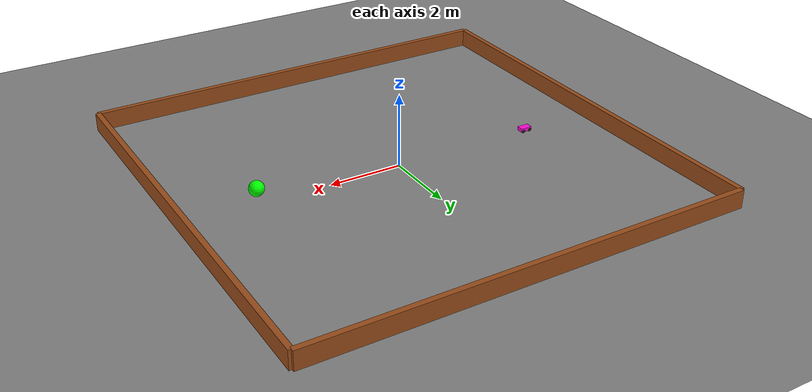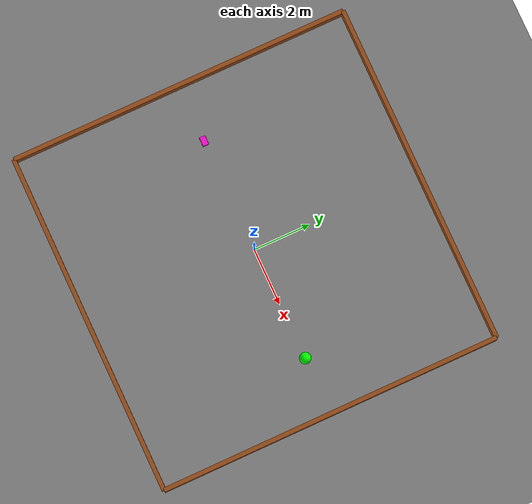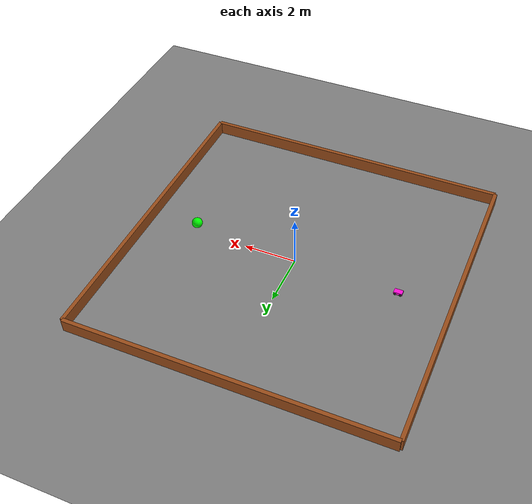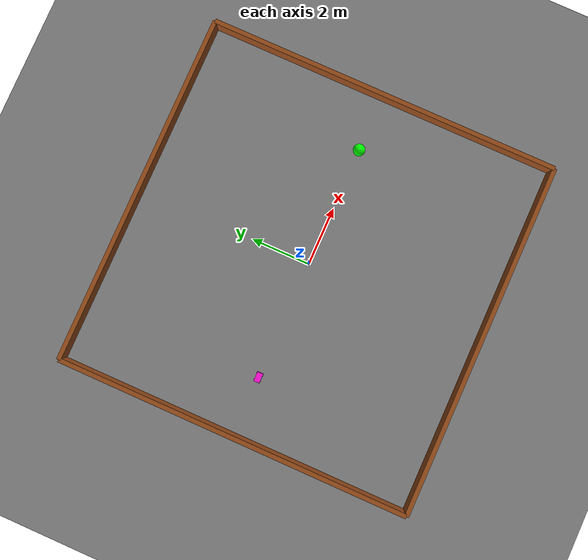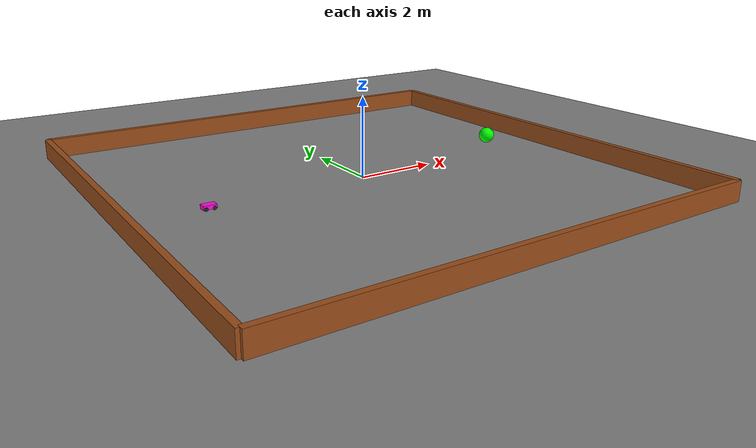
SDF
<?xml version="1.0" ?>
<sdf version="1.9">
  <world name="test_random_obstacles">

    <gui fullscreen="0">
      <plugin filename="MinimalScene" name="3D View">
        <gz-gui>
          <title>3D View</title>
          <property type="bool" key="showTitleBar">false</property>
          <property type="string" key="state">docked</property>
        </gz-gui>
        <engine>ogre2</engine>
        <scene>scene</scene>
        <ambient_light>0.4 0.4 0.4</ambient_light>
        <background_color>0.8 0.8 0.8</background_color>
        <camera_pose>0 -10 12 0 0.7 1.57</camera_pose>
      </plugin>
      <plugin filename="GzSceneManager" name="Scene Manager"/>
      <plugin filename="InteractiveViewControl" name="Interactive view"/>
      <plugin filename="CameraTracking" name="Camera Tracking"/>
      <plugin filename="MarkerManager" name="Marker Manager"/>
      <plugin filename="WorldControl" name="World control">
        <gz-gui>
          <title>World control</title>
          <property type="bool" key="showTitleBar">false</property>
          <property type="bool" key="resizable">false</property>
          <property type="double" key="height">72</property>
          <property type="string" key="state">floating</property>
          <anchors target="3D View">
            <line own="left" target="left"/>
            <line own="bottom" target="bottom"/>
          </anchors>
        </gz-gui>
        <play_pause>true</play_pause>
        <step>true</step>
      </plugin>
      <plugin filename="WorldStats" name="World stats">
        <gz-gui>
          <title>World stats</title>
          <property type="bool" key="showTitleBar">false</property>
          <property type="bool" key="resizable">false</property>
          <property type="double" key="height">110</property>
          <property type="double" key="width">290</property>
          <property type="string" key="state">floating</property>
          <anchors target="3D View">
            <line own="right" target="right"/>
            <line own="bottom" target="bottom"/>
          </anchors>
        </gz-gui>
        <sim_time>true</sim_time>
        <real_time>true</real_time>
        <real_time_factor>true</real_time_factor>
      </plugin>
      <plugin filename="EntityTree" name="Entity tree">
        <gz-gui>
          <property type="string" key="state">docked_collapsed</property>
        </gz-gui>
      </plugin>
    </gui>

    <physics name="1ms" type="ode">
      <max_step_size>0.001</max_step_size>
      <real_time_factor>1.0</real_time_factor>
    </physics>

    <plugin filename="gz-sim-physics-system" name="gz::sim::systems::Physics"/>
    <plugin filename="gz-sim-user-commands-system" name="gz::sim::systems::UserCommands"/>
    <plugin filename="gz-sim-scene-broadcaster-system" name="gz::sim::systems::SceneBroadcaster"/>
    <plugin filename="gz-sim-sensors-system" name="gz::sim::systems::Sensors">
      <render_engine>ogre2</render_engine>
    </plugin>
    <plugin filename="gz-sim-imu-system" name="gz::sim::systems::Imu"/>
    <plugin filename="gz-sim-contact-system" name="gz::sim::systems::Contact"/>

    <light type="directional" name="sun">
      <cast_shadows>true</cast_shadows>
      <pose>0 0 10 0 0 0</pose>
      <diffuse>0.9 0.9 0.9 1</diffuse>
      <direction>-0.5 0.1 -0.9</direction>
    </light>

    <model name="ground">
      <static>true</static>
      <link name="link">
        <collision name="c"><geometry><plane><normal>0 0 1</normal><size>30 30</size></plane></geometry></collision>
        <visual name="v"><geometry><plane><normal>0 0 1</normal><size>30 30</size></plane></geometry>
          <material><ambient>0.5 0.5 0.5 1</ambient></material>
        </visual>
      </link>
    </model>

    <!-- Boundary walls -->
    <model name="wall_n"><static>true</static><pose>0 6 0.25 0 0 0</pose>
      <link name="l"><collision name="c"><geometry><box><size>12 0.15 0.5</size></box></geometry></collision>
        <visual name="v"><geometry><box><size>12 0.15 0.5</size></box></geometry>
          <material><ambient>0.6 0.3 0.1 1</ambient></material></visual></link></model>
    <model name="wall_s"><static>true</static><pose>0 -6 0.25 0 0 0</pose>
      <link name="l"><collision name="c"><geometry><box><size>12 0.15 0.5</size></box></geometry></collision>
        <visual name="v"><geometry><box><size>12 0.15 0.5</size></box></geometry>
          <material><ambient>0.6 0.3 0.1 1</ambient></material></visual></link></model>
    <model name="wall_e"><static>true</static><pose>6 0 0.25 0 0 0</pose>
      <link name="l"><collision name="c"><geometry><box><size>0.15 12 0.5</size></box></geometry></collision>
        <visual name="v"><geometry><box><size>0.15 12 0.5</size></box></geometry>
          <material><ambient>0.6 0.3 0.1 1</ambient></material></visual></link></model>
    <model name="wall_w"><static>true</static><pose>-6 0 0.25 0 0 0</pose>
      <link name="l"><collision name="c"><geometry><box><size>0.15 12 0.5</size></box></geometry></collision>
        <visual name="v"><geometry><box><size>0.15 12 0.5</size></box></geometry>
          <material><ambient>0.6 0.3 0.1 1</ambient></material></visual></link></model>

    <!-- Goal marker -->
    <model name="goal_marker">
      <static>true</static>
      <pose>4.0 0.0 0.5 0 0 0</pose>
      <link name="link">
        <visual name="v"><geometry><sphere><radius>0.2</radius></sphere></geometry>
          <material><ambient>0.0 1.0 0.0 1</ambient><diffuse>0.0 1.0 0.0 1</diffuse></material>
        </visual>
      </link>
    </model>

    <!-- Limo Pro robot -->
    <include>
      <uri>model://limo_pro</uri>
      <name>limo</name>
      <pose>-4 0 0.055 0 0 0</pose>
    </include>

  </world>
</sdf>

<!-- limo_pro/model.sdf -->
<sdf version="1.9">
  <model name="limo_pro">
    <static>false</static>

    <!-- ============ CHASSIS ============ -->
    <link name="base_link">
      <inertial>
        <mass>4.5</mass>
        <inertia>
          <ixx>0.045</ixx><iyy>0.08</iyy><izz>0.09</izz>
          <ixy>0</ixy><ixz>0</ixz><iyz>0</iyz>
        </inertia>
      </inertial>
      <visual name="chassis_visual">
        <geometry>
          <box><size>0.32 0.20 0.10</size></box>
        </geometry>
        <material>
          <ambient>1.0 0.0 0.85 1</ambient>
          <diffuse>1.0 0.05 0.85 1</diffuse>
          <emissive>0.35 0.0 0.3 1</emissive>
        </material>
      </visual>
      <collision name="chassis_collision">
        <geometry>
          <box><size>0.32 0.20 0.10</size></box>
        </geometry>
      </collision>

      <!-- ============ CAMERA SENSOR ============ -->
      <sensor name="camera" type="camera">
        <pose>0.16 0 0.12 0 0 0</pose>
        <always_on>true</always_on>
        <update_rate>30</update_rate>
        <topic>limo/camera</topic>
        <camera>
          <horizontal_fov>1.2</horizontal_fov>
          <image>
            <width>640</width>
            <height>480</height>
            <format>R8G8B8</format>
          </image>
          <clip><near>0.05</near><far>50</far></clip>
        </camera>
      </sensor>

      <!-- ============ LIDAR SENSOR ============ -->
      <sensor name="lidar" type="gpu_lidar">
        <pose>0.0 0 0.15 0 0 0</pose>
        <always_on>true</always_on>
        <update_rate>10</update_rate>
        <topic>limo/lidar</topic>
        <lidar>
          <scan>
            <horizontal>
              <samples>360</samples>
              <resolution>1</resolution>
              <min_angle>0</min_angle>
              <max_angle>6.28318</max_angle>
            </horizontal>
          </scan>
          <range>
            <min>0.1</min>
            <max>12.0</max>
            <resolution>0.01</resolution>
          </range>
        </lidar>
      </sensor>

      <!-- ============ IMU SENSOR ============ -->
      <sensor name="imu" type="imu">
        <pose>0 0 0.05 0 0 0</pose>
        <always_on>true</always_on>
        <update_rate>100</update_rate>
        <topic>limo/imu</topic>
        <imu>
          <angular_velocity>
            <x><noise type="gaussian"><mean>0</mean><stddev>0.001</stddev></noise></x>
            <y><noise type="gaussian"><mean>0</mean><stddev>0.001</stddev></noise></y>
            <z><noise type="gaussian"><mean>0</mean><stddev>0.001</stddev></noise></z>
          </angular_velocity>
          <linear_acceleration>
            <x><noise type="gaussian"><mean>0</mean><stddev>0.02</stddev></noise></x>
            <y><noise type="gaussian"><mean>0</mean><stddev>0.02</stddev></noise></y>
            <z><noise type="gaussian"><mean>0</mean><stddev>0.02</stddev></noise></z>
          </linear_acceleration>
        </imu>
      </sensor>
    </link>

    <!-- ============ REAR LEFT WHEEL ============ -->
    <link name="rear_left_wheel">
      <pose>-0.1 0.096 -0.03 -1.5707 0 0</pose>
      <inertial>
        <mass>0.3</mass>
        <inertia>
          <ixx>0.0002</ixx><iyy>0.0002</iyy><izz>0.0003</izz>
          <ixy>0</ixy><ixz>0</ixz><iyz>0</iyz>
        </inertia>
      </inertial>
      <visual name="visual">
        <geometry><cylinder><radius>0.045</radius><length>0.03</length></cylinder></geometry>
        <material><ambient>0.1 0.1 0.1 1</ambient><diffuse>0.15 0.15 0.15 1</diffuse></material>
      </visual>
      <collision name="collision">
        <geometry><cylinder><radius>0.045</radius><length>0.03</length></cylinder></geometry>
        <surface>
          <friction><ode><mu>1.0</mu><mu2>1.0</mu2></ode></friction>
        </surface>
      </collision>
    </link>
    <joint name="rear_left_wheel_joint" type="revolute">
      <parent>base_link</parent><child>rear_left_wheel</child>
      <axis><xyz>0 0 1</xyz></axis>
    </joint>

    <!-- ============ REAR RIGHT WHEEL ============ -->
    <link name="rear_right_wheel">
      <pose>-0.1 -0.096 -0.03 -1.5707 0 0</pose>
      <inertial>
        <mass>0.3</mass>
        <inertia>
          <ixx>0.0002</ixx><iyy>0.0002</iyy><izz>0.0003</izz>
          <ixy>0</ixy><ixz>0</ixz><iyz>0</iyz>
        </inertia>
      </inertial>
      <visual name="visual">
        <geometry><cylinder><radius>0.045</radius><length>0.03</length></cylinder></geometry>
        <material><ambient>0.1 0.1 0.1 1</ambient><diffuse>0.15 0.15 0.15 1</diffuse></material>
      </visual>
      <collision name="collision">
        <geometry><cylinder><radius>0.045</radius><length>0.03</length></cylinder></geometry>
        <surface>
          <friction><ode><mu>1.0</mu><mu2>1.0</mu2></ode></friction>
        </surface>
      </collision>
    </link>
    <joint name="rear_right_wheel_joint" type="revolute">
      <parent>base_link</parent><child>rear_right_wheel</child>
      <axis><xyz>0 0 1</xyz></axis>
    </joint>

    <!-- ============ FRONT LEFT STEERING + WHEEL ============ -->
    <link name="front_left_steering">
      <pose>0.1 0.096 -0.03 0 0 0</pose>
      <inertial><mass>0.05</mass>
        <inertia><ixx>0.00001</ixx><iyy>0.00001</iyy><izz>0.00001</izz>
          <ixy>0</ixy><ixz>0</ixz><iyz>0</iyz></inertia>
      </inertial>
    </link>
    <joint name="front_left_steering_joint" type="revolute">
      <parent>base_link</parent><child>front_left_steering</child>
      <axis><xyz>0 0 1</xyz>
        <limit><lower>-0.48</lower><upper>0.48</upper><effort>1e6</effort></limit>
      </axis>
    </joint>

    <link name="front_left_wheel">
      <pose>0.1 0.096 -0.03 -1.5707 0 0</pose>
      <inertial>
        <mass>0.3</mass>
        <inertia>
          <ixx>0.0002</ixx><iyy>0.0002</iyy><izz>0.0003</izz>
          <ixy>0</ixy><ixz>0</ixz><iyz>0</iyz>
        </inertia>
      </inertial>
      <visual name="visual">
        <geometry><cylinder><radius>0.045</radius><length>0.03</length></cylinder></geometry>
        <material><ambient>0.1 0.1 0.1 1</ambient><diffuse>0.15 0.15 0.15 1</diffuse></material>
      </visual>
      <collision name="collision">
        <geometry><cylinder><radius>0.045</radius><length>0.03</length></cylinder></geometry>
        <surface>
          <friction><ode><mu>1.0</mu><mu2>1.0</mu2></ode></friction>
        </surface>
      </collision>
    </link>
    <joint name="front_left_wheel_joint" type="revolute">
      <parent>front_left_steering</parent><child>front_left_wheel</child>
      <axis><xyz>0 0 1</xyz></axis>
    </joint>

    <!-- ============ FRONT RIGHT STEERING + WHEEL ============ -->
    <link name="front_right_steering">
      <pose>0.1 -0.096 -0.03 0 0 0</pose>
      <inertial><mass>0.05</mass>
        <inertia><ixx>0.00001</ixx><iyy>0.00001</iyy><izz>0.00001</izz>
          <ixy>0</ixy><ixz>0</ixz><iyz>0</iyz></inertia>
      </inertial>
    </link>
    <joint name="front_right_steering_joint" type="revolute">
      <parent>base_link</parent><child>front_right_steering</child>
      <axis><xyz>0 0 1</xyz>
        <limit><lower>-0.48</lower><upper>0.48</upper><effort>1e6</effort></limit>
      </axis>
    </joint>

    <link name="front_right_wheel">
      <pose>0.1 -0.096 -0.03 -1.5707 0 0</pose>
      <inertial>
        <mass>0.3</mass>
        <inertia>
          <ixx>0.0002</ixx><iyy>0.0002</iyy><izz>0.0003</izz>
          <ixy>0</ixy><ixz>0</ixz><iyz>0</iyz>
        </inertia>
      </inertial>
      <visual name="visual">
        <geometry><cylinder><radius>0.045</radius><length>0.03</length></cylinder></geometry>
        <material><ambient>0.1 0.1 0.1 1</ambient><diffuse>0.15 0.15 0.15 1</diffuse></material>
      </visual>
      <collision name="collision">
        <geometry><cylinder><radius>0.045</radius><length>0.03</length></cylinder></geometry>
        <surface>
          <friction><ode><mu>1.0</mu><mu2>1.0</mu2></ode></friction>
        </surface>
      </collision>
    </link>
    <joint name="front_right_wheel_joint" type="revolute">
      <parent>front_right_steering</parent><child>front_right_wheel</child>
      <axis><xyz>0 0 1</xyz></axis>
    </joint>

    <!-- ============ ACKERMANN STEERING PLUGIN ============ -->
    <plugin filename="gz-sim-ackermann-steering-system"
            name="gz::sim::systems::AckermannSteering">
      <left_joint>front_left_wheel_joint</left_joint>
      <right_joint>front_right_wheel_joint</right_joint>
      <left_steering_joint>front_left_steering_joint</left_steering_joint>
      <right_steering_joint>front_right_steering_joint</right_steering_joint>
      <kingpin_width>0.192</kingpin_width>
      <steering_limit>0.48</steering_limit>
      <steer_p_gain>8.0</steer_p_gain>
      <wheel_base>0.2</wheel_base>
      <wheel_separation>0.192</wheel_separation>
      <wheel_radius>0.045</wheel_radius>
      <topic>limo/cmd_vel</topic>
      <odom_topic>limo/odom</odom_topic>
      <tf_topic>limo/tf</tf_topic>
      <frame_id>odom</frame_id>
      <child_frame_id>base_link</child_frame_id>
      <odom_publish_frequency>20</odom_publish_frequency>
    </plugin>

    <!-- Joint state publisher for odometry -->
    <plugin filename="gz-sim-joint-state-publisher-system"
            name="gz::sim::systems::JointStatePublisher">
      <topic>limo/joint_states</topic>
    </plugin>

  </model>
</sdf>
